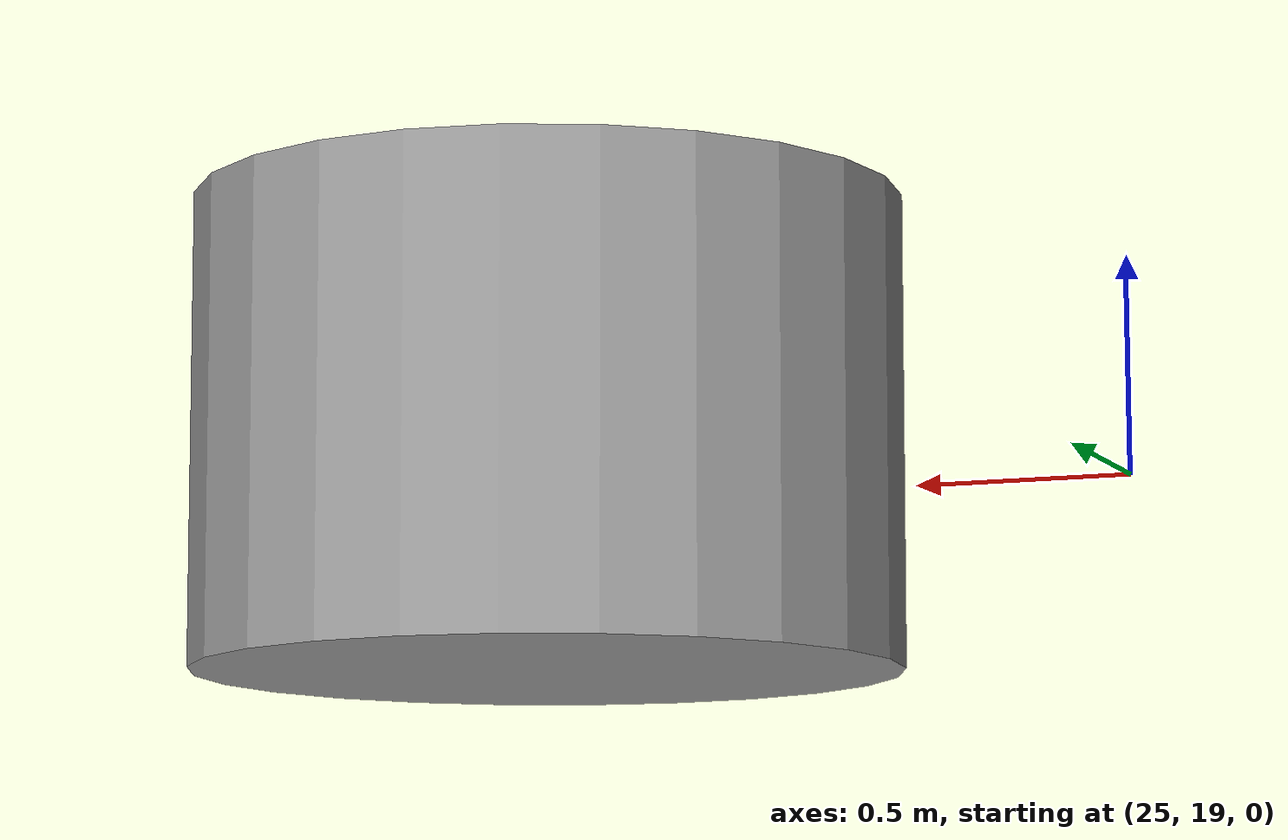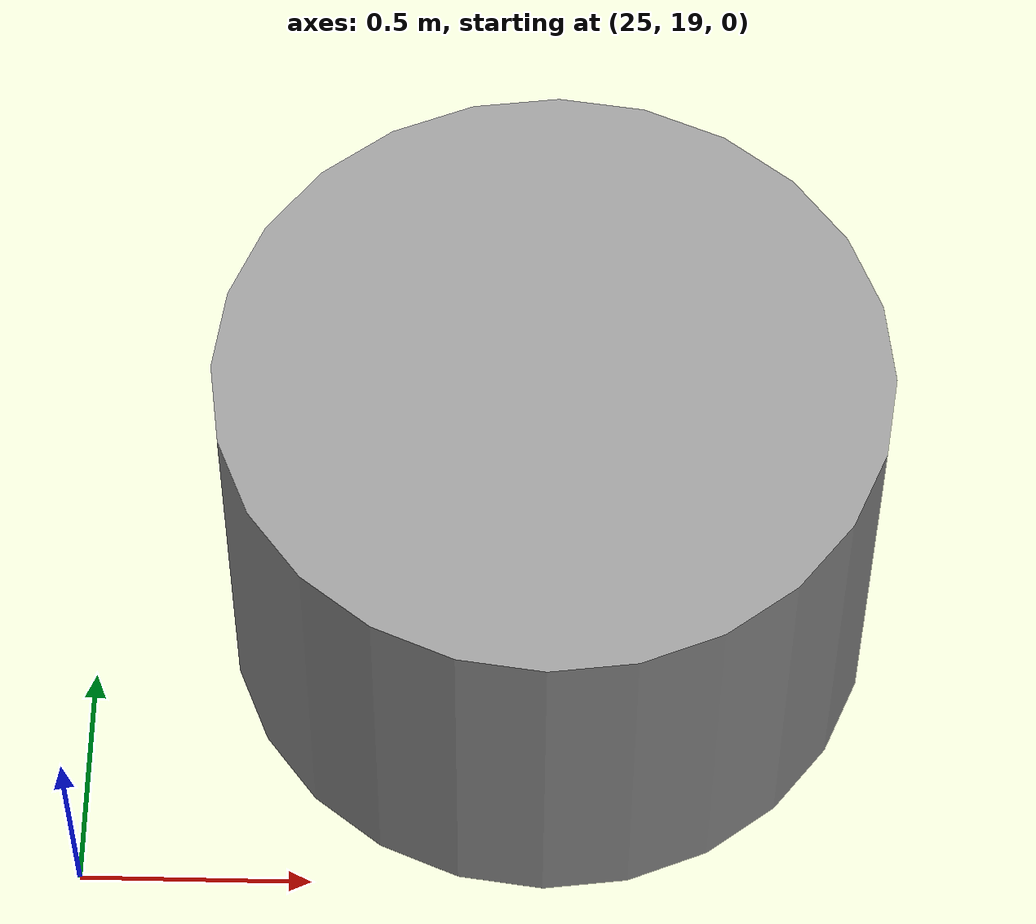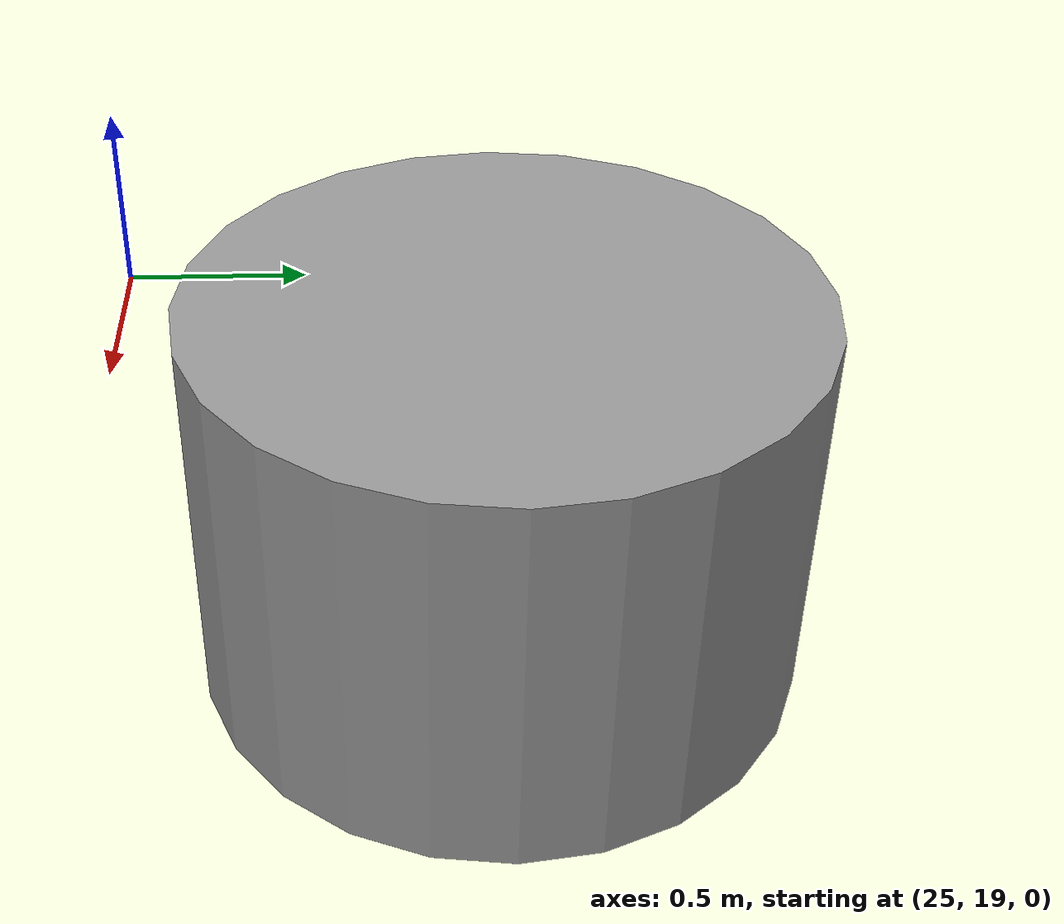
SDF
<?xml version='1.0'?>
<sdf version='1.6'>
  <model name='obstacle8'>
      <pose>26 20 0 0 0 0</pose>
      <link name='link'>
        <inertial>
          <mass>1</mass>
          <inertia>
            <ixx>0.145833</ixx>
            <ixy>0</ixy>
            <ixz>0</ixz>
            <iyy>0.145833</iyy>
            <iyz>0</iyz>
            <izz>0.125</izz>
          </inertia>
          <pose>0 0 0 0 -0 0</pose>
        </inertial>
        <collision name='collision'>
          <geometry>
            <cylinder>
              <radius>0.75</radius>
              <length>1</length>
            </cylinder>
          </geometry>
          <max_contacts>10</max_contacts>
          <surface>
            <contact>
              <ode/>
            </contact>
            <bounce/>
            <friction>
              <torsional>
                <ode/>
              </torsional>
              <ode/>
            </friction>
          </surface>
        </collision>
        <visual name='visual'>
          <geometry>
            <cylinder>
              <radius>0.75</radius>
              <length>1</length>
            </cylinder>
          </geometry>
          <material>
            <script>
              <name>Gazebo/Grey</name>
              <uri>file://media/materials/scripts/gazebo.material</uri>
            </script>
          </material>
        </visual>
        <self_collide>0</self_collide>
        <enable_wind>0</enable_wind>
        <kinematic>0</kinematic>
      </link>
    </model>
</sdf>
